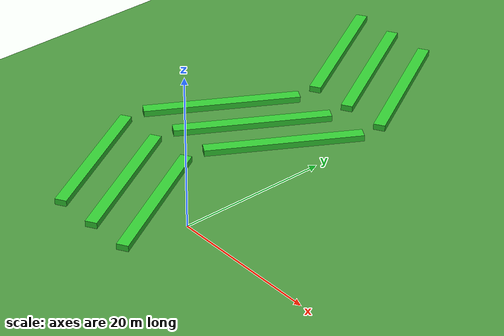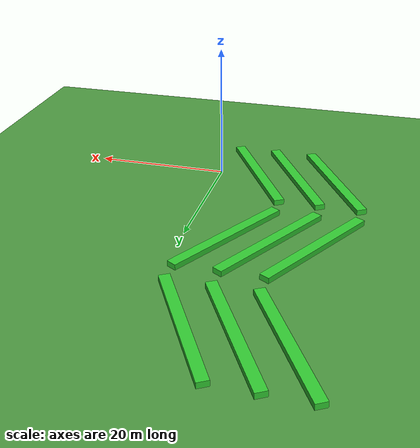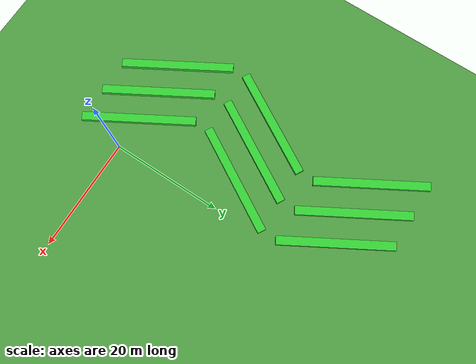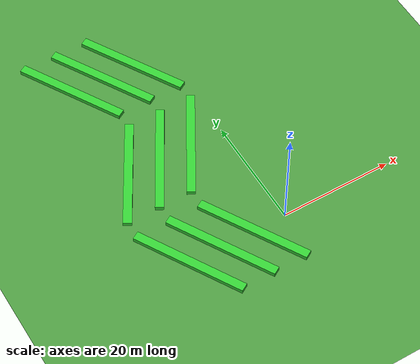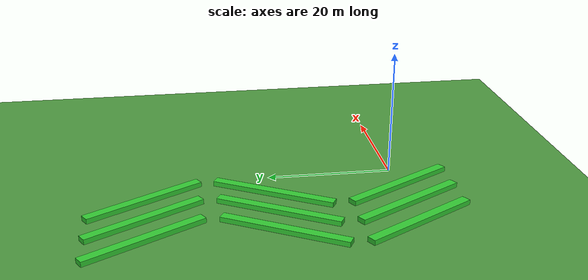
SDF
<?xml version="1.0"?>
<sdf version="1.7">
  <world name="farm_rows_world">

    <!-- Physics Configuration -->
    <physics name="default_physics" default="true" type="ode">
      <max_step_size>0.004</max_step_size>
      <real_time_factor>1.0</real_time_factor>
      <real_time_update_rate>250</real_time_update_rate>
    </physics>

    <!-- Scene Configuration -->
    <scene>
      <ambient>0.4 0.4 0.4 1</ambient>
      <background>0.7 0.8 1 1</background>
      <shadows>1</shadows>
    </scene>

    <!-- Plugin for Gazebo -->
    <plugin
      filename="gz-sim-physics-system"
      name="gz::sim::systems::Physics">
    </plugin>
    <plugin
      filename="gz-sim-user-commands-system"
      name="gz::sim::systems::UserCommands">
    </plugin>
    <plugin
      filename="gz-sim-scene-broadcaster-system"
      name="gz::sim::systems::SceneBroadcaster">
    </plugin>
    <plugin
      filename="gz-sim-contact-system"
      name="gz::sim::systems::Contact">
    </plugin>
    <plugin
      filename="gz-sim-sensors-system"
      name="gz::sim::systems::Sensors">
      <render_engine>ogre2</render_engine>
    </plugin>

    <!-- Lighting -->
    <light type="directional" name="sun">
      <cast_shadows>true</cast_shadows>
      <pose>0 0 10 0 0 0</pose>
      <diffuse>0.8 0.8 0.8 1</diffuse>
      <specular>0.8 0.8 0.8 1</specular>
      <attenuation>
        <range>1000</range>
        <constant>0.9</constant>
        <linear>0.01</linear>
        <quadratic>0.001</quadratic>
      </attenuation>
      <direction>0 0 -1</direction>
    </light>

    <!-- Agricultural Ground Plane -->
    <model name="ground_plane">
      <static>true</static>
      <link name="link">
        <collision name="collision">
          <geometry>
            <plane>
              <normal>0 0 1</normal>
              <size>200 200</size>
            </plane>
          </geometry>
          <surface>
            <friction>
              <ode>
                <mu>100</mu>
                <mu2>50</mu2>
              </ode>
            </friction>
          </surface>
        </collision>
        <visual name="visual">
          <geometry>
            <plane>
              <normal>0 0 1</normal>
              <size>200 200</size>
            </plane>
          </geometry>
          <material>
            <script>
              <uri>file://media/materials/scripts/gazebo.material</uri>
              <name>Gazebo/Grass</name>
            </script>
            <ambient>0.3 0.5 0.2 1</ambient>
            <diffuse>0.4 0.6 0.3 1</diffuse>
            <specular>0.1 0.1 0.1 1</specular>
          </material>
        </visual>
      </link>
    </model>

    <!-- Agricultural Environment Models -->
    <!-- Crop Row Markers with ZIG-ZAG SHAPE -->

    <!-- Linha 1 - Zigue-zague -->
    <model name="crop_segment_1_1">
      <pose>-18 0 0.4 0 0 0.523599</pose>  <!-- ⚡ 30 graus para direita -->
      <static>true</static>
      <link name="link">
        <collision name="collision">
          <geometry>
            <box>
              <size>1.5 20 0.8</size>
            </box>
          </geometry>
        </collision>
        <visual name="visual">
          <geometry>
            <box>
              <size>1.5 20 0.8</size>
            </box>
          </geometry>
          <material>
            <ambient>0.1 0.6 0.1 1</ambient>
            <diffuse>0.2 0.8 0.2 1</diffuse>
            <specular>0.1 0.1 0.1 1</specular>
          </material>
        </visual>
      </link>
    </model>

    <model name="crop_segment_1_2">
      <pose>-18 20 0.4 0 0 -0.523599</pose>  <!-- ⚡ 30 graus para esquerda -->
      <static>true</static>
      <link name="link">
        <collision name="collision">
          <geometry>
            <box>
              <size>1.5 20 0.8</size>
            </box>
          </geometry>
        </collision>
        <visual name="visual">
          <geometry>
            <box>
              <size>1.5 20 0.8</size>
            </box>
          </geometry>
          <material>
            <ambient>0.1 0.6 0.1 1</ambient>
            <diffuse>0.2 0.8 0.2 1</diffuse>
            <specular>0.1 0.1 0.1 1</specular>
          </material>
        </visual>
      </link>
    </model>

    <model name="crop_segment_1_3">
      <pose>-18 40 0.4 0 0 0.523599</pose>  <!-- ⚡ 30 graus para direita -->
      <static>true</static>
      <link name="link">
        <collision name="collision">
          <geometry>
            <box>
              <size>1.5 20 0.8</size>
            </box>
          </geometry>
        </collision>
        <visual name="visual">
          <geometry>
            <box>
              <size>1.5 20 0.8</size>
            </box>
          </geometry>
          <material>
            <ambient>0.1 0.6 0.1 1</ambient>
            <diffuse>0.2 0.8 0.2 1</diffuse>
            <specular>0.1 0.1 0.1 1</specular>
          </material>
        </visual>
      </link>
    </model>

    <!-- Linha 2 - Zigue-zague paralelo -->
    <model name="crop_segment_2_1">
      <pose>-12 0 0.4 0 0 0.523599</pose>  <!-- ⚡ 30 graus para direita -->
      <static>true</static>
      <link name="link">
        <collision name="collision">
          <geometry>
            <box>
              <size>1.5 20 0.8</size>
            </box>
          </geometry>
        </collision>
        <visual name="visual">
          <geometry>
            <box>
              <size>1.5 20 0.8</size>
            </box>
          </geometry>
          <material>
            <ambient>0.1 0.6 0.1 1</ambient>
            <diffuse>0.2 0.8 0.2 1</diffuse>
            <specular>0.1 0.1 0.1 1</specular>
          </material>
        </visual>
      </link>
    </model>

    <model name="crop_segment_2_2">
      <pose>-12 20 0.4 0 0 -0.523599</pose>  <!-- ⚡ 30 graus para esquerda -->
      <static>true</static>
      <link name="link">
        <collision name="collision">
          <geometry>
            <box>
              <size>1.5 20 0.8</size>
            </box>
          </geometry>
        </collision>
        <visual name="visual">
          <geometry>
            <box>
              <size>1.5 20 0.8</size>
            </box>
          </geometry>
          <material>
            <ambient>0.1 0.6 0.1 1</ambient>
            <diffuse>0.2 0.8 0.2 1</diffuse>
            <specular>0.1 0.1 0.1 1</specular>
          </material>
        </visual>
      </link>
    </model>

    <model name="crop_segment_2_3">
      <pose>-12 40 0.4 0 0 0.523599</pose>  <!-- ⚡ 30 graus para direita -->
      <static>true</static>
      <link name="link">
        <collision name="collision">
          <geometry>
            <box>
              <size>1.5 20 0.8</size>
            </box>
          </geometry>
        </collision>
        <visual name="visual">
          <geometry>
            <box>
              <size>1.5 20 0.8</size>
            </box>
          </geometry>
          <material>
            <ambient>0.1 0.6 0.1 1</ambient>
            <diffuse>0.2 0.8 0.2 1</diffuse>
            <specular>0.1 0.1 0.1 1</specular>
          </material>
        </visual>
      </link>
    </model>

    <!-- Linha 3 - Zigue-zague paralelo -->
    <model name="crop_segment_3_1">
      <pose>-6 0 0.4 0 0 0.523599</pose>  <!-- ⚡ 30 graus para direita -->
      <static>true</static>
      <link name="link">
        <collision name="collision">
          <geometry>
            <box>
              <size>1.5 20 0.8</size>
            </box>
          </geometry>
        </collision>
        <visual name="visual">
          <geometry>
            <box>
              <size>1.5 20 0.8</size>
            </box>
          </geometry>
          <material>
            <ambient>0.1 0.6 0.1 1</ambient>
            <diffuse>0.2 0.8 0.2 1</diffuse>
            <specular>0.1 0.1 0.1 1</specular>
          </material>
        </visual>
      </link>
    </model>

    <model name="crop_segment_3_2">
      <pose>-6 20 0.4 0 0 -0.523599</pose>  <!-- ⚡ 30 graus para esquerda -->
      <static>true</static>
      <link name="link">
        <collision name="collision">
          <geometry>
            <box>
              <size>1.5 20 0.8</size>
            </box>
          </geometry>
        </collision>
        <visual name="visual">
          <geometry>
            <box>
              <size>1.5 20 0.8</size>
            </box>
          </geometry>
          <material>
            <ambient>0.1 0.6 0.1 1</ambient>
            <diffuse>0.2 0.8 0.2 1</diffuse>
            <specular>0.1 0.1 0.1 1</specular>
          </material>
        </visual>
      </link>
    </model>

    <model name="crop_segment_3_3">
      <pose>-6 40 0.4 0 0 0.523599</pose>  <!-- ⚡ 30 graus para direita -->
      <static>true</static>
      <link name="link">
        <collision name="collision">
          <geometry>
            <box>
              <size>1.5 20 0.8</size>
            </box>
          </geometry>
        </collision>
        <visual name="visual">
          <geometry>
            <box>
              <size>1.5 20 0.8</size>
            </box>
          </geometry>
          <material>
            <ambient>0.1 0.6 0.1 1</ambient>
            <diffuse>0.2 0.8 0.2 1</diffuse>
            <specular>0.1 0.1 0.1 1</specular>
          </material>
        </visual>
      </link>
    </model>

    <!-- Gravity -->
    <gravity>0 0 -9.81</gravity>

  </world>
</sdf>
